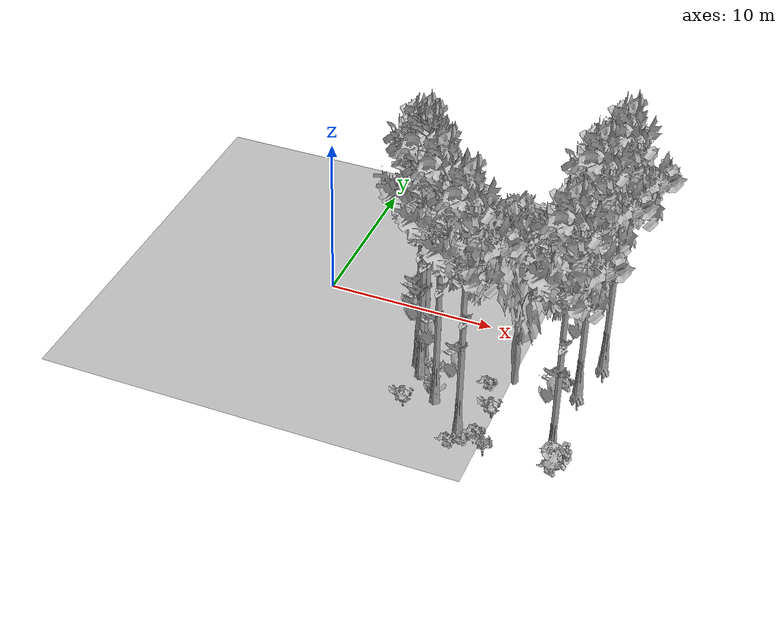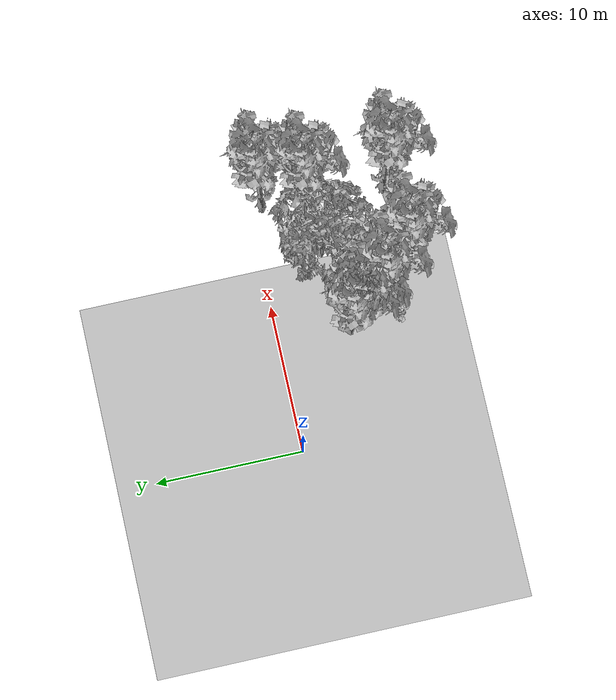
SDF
<sdf version="1.7">
 <world name="default">
  <model name="ground_plane">
   <static>1</static>
   <link name="link">
    <collision name="collision">
     <pose>-50 0 0 0 -0 0</pose>
     <geometry><plane><normal>0 0 1</normal><size>80 80</size></plane></geometry>
     <surface><contact><ode><min_depth>0.01</min_depth><max_vel>0</max_vel></ode></contact></surface>
    </collision>
    <visual name="grass">
     <cast_shadows>0</cast_shadows>
     <geometry>
      <mesh>
       <scale>0.46714285714285714 0.46714285714285714 0.1</scale>
       <uri>file://grass_plane/meshes/grass_plane.dae</uri>
      </mesh>
     </geometry>
    </visual>
   </link>
  </model>
  <model name="Tree 89">
   <static>1</static>
   <pose>9.262212219479636 -7.313282562110615 0 1.57079 -0 0</pose>
   <link name="link">
    <collision name="collision">
     <geometry><mesh><scale>3.5 5 3.5</scale><uri>model://tree_9/meshes/tree_9.obj</uri></mesh></geometry>
    </collision>
    <visual name="visual">
     <geometry><mesh><scale>3.5 5 3.5</scale><uri>model://tree_9/meshes/tree_9.obj</uri></mesh></geometry>
    </visual>
   </link>
  </model>
  <model name="Tree 262">
   <static>1</static>
   <pose>7.883407850451775 -5.324317402014742 0 1.57079 -0 0</pose>
   <link name="link">
    <collision name="collision">
     <geometry><mesh><scale>3.5 5 3.5</scale><uri>model://tree_9/meshes/tree_9.obj</uri></mesh></geometry>
    </collision>
    <visual name="visual">
     <geometry><mesh><scale>3.5 5 3.5</scale><uri>model://tree_9/meshes/tree_9.obj</uri></mesh></geometry>
    </visual>
   </link>
  </model>
  <model name="Tree 283">
   <static>1</static>
   <pose>16.354098649126897 -3.7236530313499117 0 1.57079 -0 0</pose>
   <link name="link">
    <collision name="collision">
     <geometry><mesh><scale>3.5 5 3.5</scale><uri>model://tree_9/meshes/tree_9.obj</uri></mesh></geometry>
    </collision>
    <visual name="visual">
     <geometry><mesh><scale>3.5 5 3.5</scale><uri>model://tree_9/meshes/tree_9.obj</uri></mesh></geometry>
    </visual>
   </link>
  </model>
  <model name="Tree 287">
   <static>1</static>
   <pose>17.004842276473873 -0.8890815989193186 0 1.57079 -0 0</pose>
   <link name="link">
    <collision name="collision">
     <geometry><mesh><scale>3.5 5 3.5</scale><uri>model://tree_9/meshes/tree_9.obj</uri></mesh></geometry>
    </collision>
    <visual name="visual">
     <geometry><mesh><scale>3.5 5 3.5</scale><uri>model://tree_9/meshes/tree_9.obj</uri></mesh></geometry>
    </visual>
   </link>
  </model>
  <model name="Tree 335">
   <static>1</static>
   <pose>7.277385517064211 -4.8459306372533035 0 1.57079 -0 0</pose>
   <link name="link">
    <collision name="collision">
     <geometry><mesh><scale>3.5 5 3.5</scale><uri>model://tree_9/meshes/tree_9.obj</uri></mesh></geometry>
    </collision>
    <visual name="visual">
     <geometry><mesh><scale>3.5 5 3.5</scale><uri>model://tree_9/meshes/tree_9.obj</uri></mesh></geometry>
    </visual>
   </link>
  </model>
  <model name="Tree 364">
   <static>1</static>
   <pose>11.291260429936244 -9.247944990199095 0 1.57079 -0 0</pose>
   <link name="link">
    <collision name="collision">
     <geometry><mesh><scale>3.5 5 3.5</scale><uri>model://tree_9/meshes/tree_9.obj</uri></mesh></geometry>
    </collision>
    <visual name="visual">
     <geometry><mesh><scale>3.5 5 3.5</scale><uri>model://tree_9/meshes/tree_9.obj</uri></mesh></geometry>
    </visual>
   </link>
  </model>
  <model name="Tree 383">
   <static>1</static>
   <pose>16.514721799464247 -9.18382442247923 0 1.57079 -0 0</pose>
   <link name="link">
    <collision name="collision">
     <geometry><mesh><scale>3.5 5 3.5</scale><uri>model://tree_9/meshes/tree_9.obj</uri></mesh></geometry>
    </collision>
    <visual name="visual">
     <geometry><mesh><scale>3.5 5 3.5</scale><uri>model://tree_9/meshes/tree_9.obj</uri></mesh></geometry>
    </visual>
   </link>
  </model>
  <model name="Tree 552">
   <static>1</static>
   <pose>7.75329063518884 -5.657471641958402 0 1.57079 -0 0</pose>
   <link name="link">
    <collision name="collision">
     <geometry><mesh><scale>3.5 5 3.5</scale><uri>model://tree_9/meshes/tree_9.obj</uri></mesh></geometry>
    </collision>
    <visual name="visual">
     <geometry><mesh><scale>3.5 5 3.5</scale><uri>model://tree_9/meshes/tree_9.obj</uri></mesh></geometry>
    </visual>
   </link>
  </model>
  <model name="Tree 605">
   <static>1</static>
   <pose>12.706422066316193 -4.094968110943952 0 1.57079 -0 0</pose>
   <link name="link">
    <collision name="collision">
     <geometry><mesh><scale>3.5 5 3.5</scale><uri>model://tree_2/meshes/tree_2.obj</uri></mesh></geometry>
    </collision>
    <visual name="visual">
     <geometry><mesh><scale>3.5 5 3.5</scale><uri>model://tree_2/meshes/tree_2.obj</uri></mesh></geometry>
    </visual>
   </link>
  </model>
  <model name="Bush 57">
   <static>1</static>
   <pose>12.525820456026857 -7.318427314160452 0 1.57079 -0 0</pose>
   <link name="link">
    <collision name="collision">
     <geometry><mesh><scale>2 2 2</scale><uri>model://bush_0/meshes/bush_0.obj</uri></mesh></geometry>
     <surface><contact><collide_without_contact>false</collide_without_contact></contact></surface>
    </collision>
    <visual name="visual">
     <geometry><mesh><scale>2 2 2</scale><uri>model://bush_0/meshes/bush_0.obj</uri></mesh></geometry>
    </visual>
   </link>
  </model>
  <model name="Bush 58">
   <static>1</static>
   <pose>8.800002838199738 -6.72980035234567 0 1.57079 -0 0</pose>
   <link name="link">
    <collision name="collision">
     <geometry><mesh><scale>2 2 2</scale><uri>model://bush_4/meshes/bush_4.obj</uri></mesh></geometry>
     <surface><contact><collide_without_contact>false</collide_without_contact></contact></surface>
    </collision>
    <visual name="visual">
     <geometry><mesh><scale>2 2 2</scale><uri>model://bush_4/meshes/bush_4.obj</uri></mesh></geometry>
    </visual>
   </link>
  </model>
  <model name="Bush 72">
   <static>1</static>
   <pose>15.422120787705879 -3.1423750761917475 0 1.57079 -0 0</pose>
   <link name="link">
    <collision name="collision">
     <geometry><mesh><scale>2 2 2</scale><uri>model://bush_2/meshes/bush_2.obj</uri></mesh></geometry>
     <surface><contact><collide_without_contact>false</collide_without_contact></contact></surface>
    </collision>
    <visual name="visual">
     <geometry><mesh><scale>2 2 2</scale><uri>model://bush_2/meshes/bush_2.obj</uri></mesh></geometry>
    </visual>
   </link>
  </model>
  <model name="Bush 129">
   <static>1</static>
   <pose>11.568224734537353 -9.563851670095353 0 1.57079 -0 0</pose>
   <link name="link">
    <collision name="collision">
     <geometry><mesh><scale>2 2 2</scale><uri>model://bush_2/meshes/bush_2.obj</uri></mesh></geometry>
     <surface><contact><collide_without_contact>false</collide_without_contact></contact></surface>
    </collision>
    <visual name="visual">
     <geometry><mesh><scale>2 2 2</scale><uri>model://bush_2/meshes/bush_2.obj</uri></mesh></geometry>
    </visual>
   </link>
  </model>
  <model name="Bush 161">
   <static>1</static>
   <pose>8.753193594466424 -5.5382519878523055 0 1.57079 -0 0</pose>
   <link name="link">
    <collision name="collision">
     <geometry><mesh><scale>2 2 2</scale><uri>model://bush_5/meshes/bush_5.obj</uri></mesh></geometry>
     <surface><contact><collide_without_contact>false</collide_without_contact></contact></surface>
    </collision>
    <visual name="visual">
     <geometry><mesh><scale>2 2 2</scale><uri>model://bush_5/meshes/bush_5.obj</uri></mesh></geometry>
    </visual>
   </link>
  </model>
  <model name="Bush 164">
   <static>1</static>
   <pose>10.948782670885443 -10.029641162555556 0 1.57079 -0 0</pose>
   <link name="link">
    <collision name="collision">
     <geometry><mesh><scale>2 2 2</scale><uri>model://bush_2/meshes/bush_2.obj</uri></mesh></geometry>
     <surface><contact><collide_without_contact>false</collide_without_contact></contact></surface>
    </collision>
    <visual name="visual">
     <geometry><mesh><scale>2 2 2</scale><uri>model://bush_2/meshes/bush_2.obj</uri></mesh></geometry>
    </visual>
   </link>
  </model>
  <model name="Bush 177">
   <static>1</static>
   <pose>15.00385911774194 -2.5658915744628388 0 1.57079 -0 0</pose>
   <link name="link">
    <collision name="collision">
     <geometry><mesh><scale>2 2 2</scale><uri>model://bush_2/meshes/bush_2.obj</uri></mesh></geometry>
     <surface><contact><collide_without_contact>false</collide_without_contact></contact></surface>
    </collision>
    <visual name="visual">
     <geometry><mesh><scale>2 2 2</scale><uri>model://bush_2/meshes/bush_2.obj</uri></mesh></geometry>
    </visual>
   </link>
  </model>
  <model name="Bush 271">
   <static>1</static>
   <pose>16.901844075953008 -9.969903820544232 0 1.57079 -0 0</pose>
   <link name="link">
    <collision name="collision">
     <geometry><mesh><scale>2 2 2</scale><uri>model://bush_1/meshes/bush_1.obj</uri></mesh></geometry>
     <surface><contact><collide_without_contact>false</collide_without_contact></contact></surface>
    </collision>
    <visual name="visual">
     <geometry><mesh><scale>2 2 2</scale><uri>model://bush_1/meshes/bush_1.obj</uri></mesh></geometry>
    </visual>
   </link>
  </model>
  <model name="Bush 346">
   <static>1</static>
   <pose>13.109313689914146 -10.329126489072856 0 1.57079 -0 0</pose>
   <link name="link">
    <collision name="collision">
     <geometry><mesh><scale>2 2 2</scale><uri>model://bush_5/meshes/bush_5.obj</uri></mesh></geometry>
     <surface><contact><collide_without_contact>false</collide_without_contact></contact></surface>
    </collision>
    <visual name="visual">
     <geometry><mesh><scale>2 2 2</scale><uri>model://bush_5/meshes/bush_5.obj</uri></mesh></geometry>
    </visual>
   </link>
  </model>
  <model name="Bush 384">
   <static>1</static>
   <pose>12.157880820160791 -8.812472957278288 0 1.57079 -0 0</pose>
   <link name="link">
    <collision name="collision">
     <geometry><mesh><scale>2 2 2</scale><uri>model://bush_2/meshes/bush_2.obj</uri></mesh></geometry>
     <surface><contact><collide_without_contact>false</collide_without_contact></contact></surface>
    </collision>
    <visual name="visual">
     <geometry><mesh><scale>2 2 2</scale><uri>model://bush_2/meshes/bush_2.obj</uri></mesh></geometry>
    </visual>
   </link>
  </model>
  <model name="Bush 489">
   <static>1</static>
   <pose>7.7454463443789265 -8.304507760896314 0 1.57079 -0 0</pose>
   <link name="link">
    <collision name="collision">
     <geometry><mesh><scale>2 2 2</scale><uri>model://bush_0/meshes/bush_0.obj</uri></mesh></geometry>
     <surface><contact><collide_without_contact>false</collide_without_contact></contact></surface>
    </collision>
    <visual name="visual">
     <geometry><mesh><scale>2 2 2</scale><uri>model://bush_0/meshes/bush_0.obj</uri></mesh></geometry>
    </visual>
   </link>
  </model>
  <model name="Bush 582">
   <static>1</static>
   <pose>11.478041798209247 -4.834328732951661 0 1.57079 -0 0</pose>
   <link name="link">
    <collision name="collision">
     <geometry><mesh><scale>2 2 2</scale><uri>model://bush_2/meshes/bush_2.obj</uri></mesh></geometry>
     <surface><contact><collide_without_contact>false</collide_without_contact></contact></surface>
    </collision>
    <visual name="visual">
     <geometry><mesh><scale>2 2 2</scale><uri>model://bush_2/meshes/bush_2.obj</uri></mesh></geometry>
    </visual>
   </link>
  </model>
  <model name="Bush 622">
   <static>1</static>
   <pose>16.602439608775384 -9.865920225065949 0 1.57079 -0 0</pose>
   <link name="link">
    <collision name="collision">
     <geometry><mesh><scale>2 2 2</scale><uri>model://bush_2/meshes/bush_2.obj</uri></mesh></geometry>
     <surface><contact><collide_without_contact>false</collide_without_contact></contact></surface>
    </collision>
    <visual name="visual">
     <geometry><mesh><scale>2 2 2</scale><uri>model://bush_2/meshes/bush_2.obj</uri></mesh></geometry>
    </visual>
   </link>
  </model>
 </world>
</sdf>
